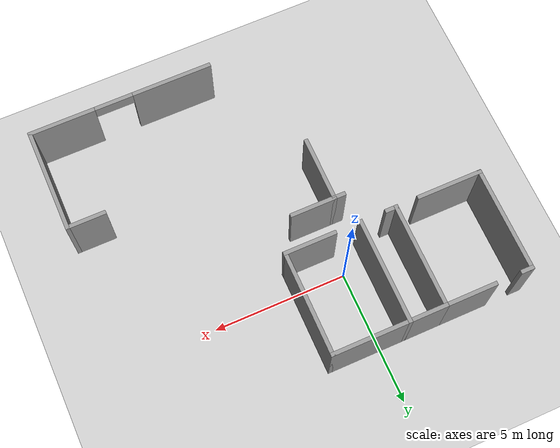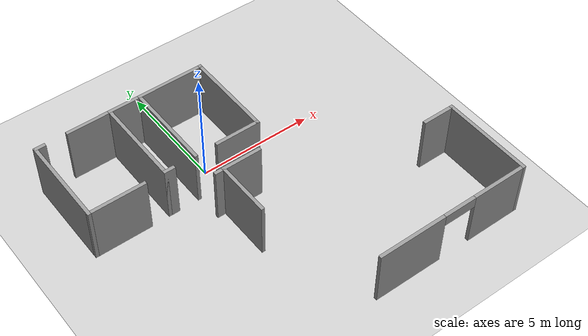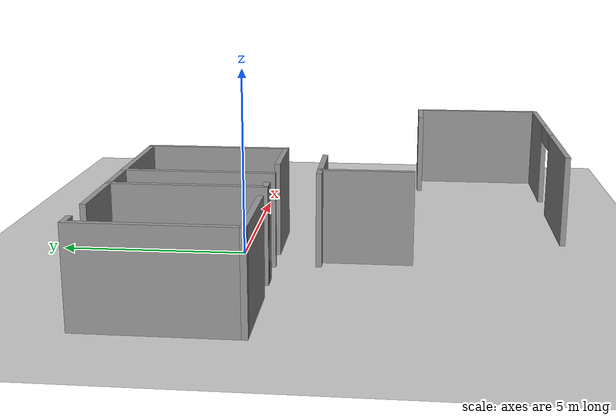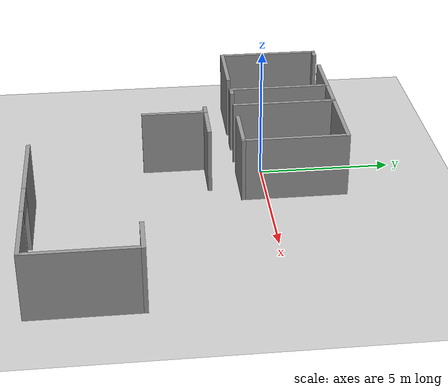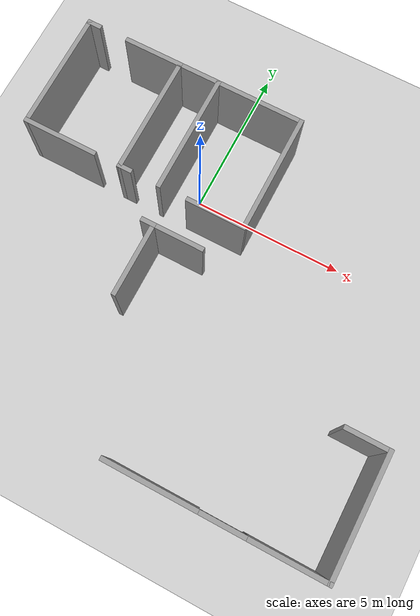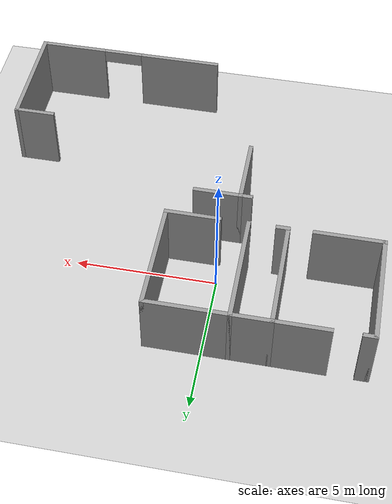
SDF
<sdf version="1.6">
 <world name="default">
  <model name="ground_plane">
   <static>1</static>
   <link name="link">
    <collision name="collision">
     <geometry><plane><normal>0 0 1</normal><size>100 100</size></plane></geometry>
     <surface><friction><ode><mu>100</mu><mu2>50</mu2></ode></friction></surface>
    </collision>
    <visual name="visual">
     <cast_shadows>0</cast_shadows>
     <geometry><plane><normal>0 0 1</normal><size>100 100</size></plane></geometry>
     <material>
      <script><uri>file://media/materials/scripts/gazebo.material</uri><name>Gazebo/Grey</name></script>
     </material>
    </visual>
   </link>
  </model>
  <model name="cma_escritorio">
   <pose>-1.79682 1.02121 0 0 -0 0</pose>
   <link name="Wall_11">
    <collision name="Wall_11_Collision">
     <geometry><box><size>2 0.15 2.5</size></box></geometry>
     <pose>0 0 1.25 0 -0 0</pose>
    </collision>
    <visual name="Wall_11_Visual">
     <pose>0 0 1.25 0 -0 0</pose>
     <geometry><box><size>2 0.15 2.5</size></box></geometry>
     <material>
      <script><uri>file://media/materials/scripts/gazebo.material</uri><name>Gazebo/Grey</name></script>
      <ambient>1 1 1 1</ambient>
     </material>
    </visual>
    <pose>-1.4 1.93 0 0 -0 3.14159</pose>
   </link>
   <link name="Wall_2">
    <collision name="Wall_2_Collision">
     <geometry><box><size>4 0.15 2.5</size></box></geometry>
     <pose>0 0 1.25 0 -0 0</pose>
    </collision>
    <visual name="Wall_2_Visual">
     <pose>0 0 1.25 0 -0 0</pose>
     <geometry><box><size>4 0.15 2.5</size></box></geometry>
     <material>
      <script><uri>file://media/materials/scripts/gazebo.material</uri><name>Gazebo/Grey</name></script>
      <ambient>1 1 1 1</ambient>
     </material>
    </visual>
    <pose>0.875 0.005 0 0 -0 1.5708</pose>
   </link>
   <link name="Wall_25">
    <collision name="Wall_25_Collision">
     <geometry><box><size>2.5 0.15 2.5</size></box></geometry>
     <pose>0 0 1.25 0 -0 0</pose>
    </collision>
    <visual name="Wall_25_Visual">
     <pose>0 0 1.25 0 -0 0</pose>
     <geometry><box><size>2.5 0.15 2.5</size></box></geometry>
     <material>
      <script><uri>file://media/materials/scripts/gazebo.material</uri><name>Gazebo/Grey</name></script>
      <ambient>1 1 1 1</ambient>
     </material>
    </visual>
    <pose>-2.55 -1.93 0 0 -0 3.14159</pose>
   </link>
   <link name="Wall_26">
    <collision name="Wall_26_Collision">
     <geometry><box><size>4 0.15 2.5</size></box></geometry>
     <pose>0 0 1.25 0 -0 0</pose>
    </collision>
    <visual name="Wall_26_Visual">
     <pose>0 0 1.25 0 -0 0</pose>
     <geometry><box><size>4 0.15 2.5</size></box></geometry>
     <material>
      <script><uri>file://media/materials/scripts/gazebo.material</uri><name>Gazebo/Grey</name></script>
      <ambient>1 1 1 1</ambient>
     </material>
    </visual>
    <pose>-3.725 -0.005 0 0 -0 1.5708</pose>
   </link>
   <link name="Wall_27">
    <collision name="Wall_27_Collision">
     <geometry><box><size>0.5 0.15 2.5</size></box></geometry>
     <pose>0 0 1.25 0 -0 0</pose>
    </collision>
    <visual name="Wall_27_Visual">
     <pose>0 0 1.25 0 -0 0</pose>
     <geometry><box><size>0.5 0.15 2.5</size></box></geometry>
     <material>
      <script><uri>file://media/materials/scripts/gazebo.material</uri><name>Gazebo/Grey</name></script>
      <ambient>1 1 1 1</ambient>
     </material>
    </visual>
    <pose>-3.55 1.92 0 0 -0 0</pose>
   </link>
   <link name="Wall_3">
    <collision name="Wall_3_Collision">
     <geometry><box><size>3 0.15 2.5</size></box></geometry>
     <pose>0 0 1.25 0 -0 0</pose>
    </collision>
    <visual name="Wall_3_Visual">
     <pose>0 0 1.25 0 -0 0</pose>
     <geometry><box><size>3 0.15 2.5</size></box></geometry>
     <material>
      <script><uri>file://media/materials/scripts/gazebo.material</uri><name>Gazebo/Grey</name></script>
      <ambient>1 1 1 1</ambient>
     </material>
    </visual>
    <pose>2.3 1.93 0 0 -0 0</pose>
   </link>
   <link name="Wall_4">
    <collision name="Wall_4_Collision">
     <geometry><box><size>4 0.15 2.5</size></box></geometry>
     <pose>0 0 1.25 0 -0 0</pose>
    </collision>
    <visual name="Wall_4_Visual">
     <pose>0 0 1.25 0 -0 0</pose>
     <geometry><box><size>4 0.15 2.5</size></box></geometry>
     <material>
      <script><uri>file://media/materials/scripts/gazebo.material</uri><name>Gazebo/Grey</name></script>
      <ambient>1 1 1 1</ambient>
     </material>
    </visual>
    <pose>3.725 0.005 0 0 0 -1.5708</pose>
   </link>
   <link name="Wall_5">
    <collision name="Wall_5_Collision">
     <geometry><box><size>2 0.15 2.5</size></box></geometry>
     <pose>0 0 1.25 0 -0 0</pose>
    </collision>
    <visual name="Wall_5_Visual">
     <pose>0 0 1.25 0 -0 0</pose>
     <geometry><box><size>2 0.15 2.5</size></box></geometry>
     <material>
      <script><uri>file://media/materials/scripts/gazebo.material</uri><name>Gazebo/Grey</name></script>
      <ambient>1 1 1 1</ambient>
     </material>
    </visual>
    <pose>2.8 -1.92 0 0 -0 3.14159</pose>
   </link>
   <link name="Wall_7">
    <collision name="Wall_7_Collision">
     <geometry><box><size>1.5 0.15 2.5</size></box></geometry>
     <pose>0 0 1.25 0 -0 0</pose>
    </collision>
    <visual name="Wall_7_Visual">
     <pose>0 0 1.25 0 -0 0</pose>
     <geometry><box><size>1.5 0.15 2.5</size></box></geometry>
     <material>
      <script><uri>file://media/materials/scripts/gazebo.material</uri><name>Gazebo/Grey</name></script>
      <ambient>1 1 1 1</ambient>
     </material>
    </visual>
    <pose>0.2 1.93 0 0 -0 3.14159</pose>
   </link>
   <link name="Wall_8">
    <collision name="Wall_8_Collision">
     <geometry><box><size>4 0.15 2.5</size></box></geometry>
     <pose>0 0 1.25 0 -0 0</pose>
    </collision>
    <visual name="Wall_8_Visual">
     <pose>0 0 1.25 0 -0 0</pose>
     <geometry><box><size>4 0.15 2.5</size></box></geometry>
     <material>
      <script><uri>file://media/materials/scripts/gazebo.material</uri><name>Gazebo/Grey</name></script>
      <ambient>1 1 1 1</ambient>
     </material>
    </visual>
    <pose>-0.475 0.005 0 0 0 -1.5708</pose>
   </link>
   <link name="Wall_9">
    <collision name="Wall_9_Collision">
     <geometry><box><size>0.5 0.15 2.5</size></box></geometry>
     <pose>0 0 1.25 0 -0 0</pose>
    </collision>
    <visual name="Wall_9_Visual">
     <pose>0 0 1.25 0 -0 0</pose>
     <geometry><box><size>0.5 0.15 2.5</size></box></geometry>
     <material>
      <script><uri>file://media/materials/scripts/gazebo.material</uri><name>Gazebo/Grey</name></script>
      <ambient>1 1 1 1</ambient>
     </material>
    </visual>
    <pose>-0.3 -1.92 0 0 -0 0</pose>
   </link>
   <static>1</static>
  </model>
  <model name="cma_parede_t">
   <pose>0.164039 -3.24829 0 0 -0 0</pose>
   <link name="Wall_15">
    <collision name="Wall_15_Collision">
     <geometry><box><size>2.5 0.15 2.5</size></box></geometry>
     <pose>0 0 1.25 0 -0 0</pose>
    </collision>
    <visual name="Wall_15_Visual">
     <pose>0 0 1.25 0 -0 0</pose>
     <geometry><box><size>2.5 0.15 2.5</size></box></geometry>
     <material>
      <script><uri>file://media/materials/scripts/gazebo.material</uri><name>Gazebo/Grey</name></script>
      <ambient>1 1 1 1</ambient>
     </material>
    </visual>
    <pose>-0.625 0 0 0 -0 1.5708</pose>
   </link>
   <link name="Wall_16">
    <collision name="Wall_16_Collision">
     <geometry><box><size>0.5 0.15 2.5</size></box></geometry>
     <pose>0 0 1.25 0 -0 0</pose>
    </collision>
    <visual name="Wall_16_Visual">
     <pose>0 0 1.25 0 -0 0</pose>
     <geometry><box><size>0.5 0.15 2.5</size></box></geometry>
     <material>
      <script><uri>file://media/materials/scripts/gazebo.material</uri><name>Gazebo/Grey</name></script>
      <ambient>1 1 1 1</ambient>
     </material>
    </visual>
    <pose>-0.8 1.175 0 0 -0 3.14159</pose>
   </link>
   <link name="Wall_18">
    <collision name="Wall_18_Collision">
     <geometry><box><size>1.75 0.15 2.5</size></box></geometry>
     <pose>0 0 1.25 0 -0 0</pose>
    </collision>
    <visual name="Wall_18_Visual">
     <pose>0 0 1.25 0 -0 0</pose>
     <geometry><box><size>1.75 0.15 2.5</size></box></geometry>
     <material>
      <script><uri>file://media/materials/scripts/gazebo.material</uri><name>Gazebo/Grey</name></script>
      <ambient>1 1 1 1</ambient>
     </material>
    </visual>
    <pose>0.175 1.175 0 0 -0 0</pose>
   </link>
   <static>1</static>
  </model>
  <model name="cma_parede_L">
   <pose>4.97628 -6.69992 0 0 -0 0</pose>
   <link name="Wall_0">
    <pose>0 -1.925 0 0 -0 0</pose>
    <visual name="Wall_0_Visual_0">
     <pose>-1.985 0 1.25 0 -0 0</pose>
     <geometry><box><size>3.03 0.15 2.5</size></box></geometry>
     <material>
      <script><uri>file://media/materials/scripts/gazebo.material</uri><name>Gazebo/Grey</name></script>
      <ambient>1 1 1 1</ambient>
     </material>
    </visual>
    <collision name="Wall_0_Collision_0">
     <geometry><box><size>3.03 0.15 2.5</size></box></geometry>
     <pose>-1.985 0 1.25 0 -0 0</pose>
    </collision>
    <visual name="Wall_0_Visual_1">
     <pose>2.24 0 1.25 0 -0 0</pose>
     <geometry><box><size>2.52 0.15 2.5</size></box></geometry>
     <material>
      <script><uri>file://media/materials/scripts/gazebo.material</uri><name>Gazebo/Grey</name></script>
      <ambient>1 1 1 1</ambient>
     </material>
    </visual>
    <collision name="Wall_0_Collision_1">
     <geometry><box><size>2.52 0.15 2.5</size></box></geometry>
     <pose>2.24 0 1.25 0 -0 0</pose>
    </collision>
    <visual name="Wall_0_Visual_2">
     <pose>0.255 0 2.25 0 -0 0</pose>
     <geometry><box><size>1.45 0.15 0.5</size></box></geometry>
     <material>
      <script><uri>file://media/materials/scripts/gazebo.material</uri><name>Gazebo/Grey</name></script>
      <ambient>1 1 1 1</ambient>
     </material>
    </visual>
    <collision name="Wall_0_Collision_2">
     <geometry><box><size>1.45 0.15 0.5</size></box></geometry>
     <pose>0.255 0 2.25 0 -0 0</pose>
    </collision>
   </link>
   <link name="Wall_1">
    <collision name="Wall_1_Collision">
     <geometry><box><size>4 0.15 2.5</size></box></geometry>
     <pose>0 0 1.25 0 -0 0</pose>
    </collision>
    <visual name="Wall_1_Visual">
     <pose>0 0 1.25 0 -0 0</pose>
     <geometry><box><size>4 0.15 2.5</size></box></geometry>
     <material>
      <script><uri>file://media/materials/scripts/gazebo.material</uri><name>Gazebo/Grey</name></script>
      <ambient>1 1 1 1</ambient>
     </material>
    </visual>
    <pose>3.425 0 0 0 -0 1.5708</pose>
   </link>
   <link name="Wall_2">
    <collision name="Wall_2_Collision">
     <geometry><box><size>1.5 0.15 2.5</size></box></geometry>
     <pose>0 0 1.25 0 -0 0</pose>
    </collision>
    <visual name="Wall_2_Visual">
     <pose>0 0 1.25 0 -0 0</pose>
     <geometry><box><size>1.5 0.15 2.5</size></box></geometry>
     <material>
      <script><uri>file://media/materials/scripts/gazebo.material</uri><name>Gazebo/Grey</name></script>
      <ambient>1 1 1 1</ambient>
     </material>
    </visual>
    <pose>2.75 1.925 0 0 -0 3.14159</pose>
   </link>
   <static>1</static>
  </model>
 </world>
</sdf>
